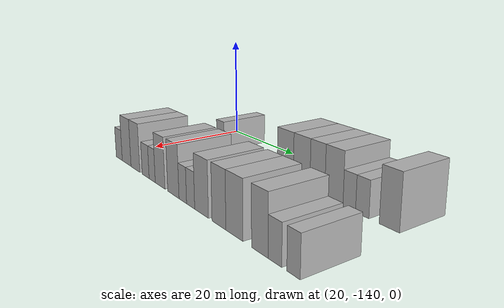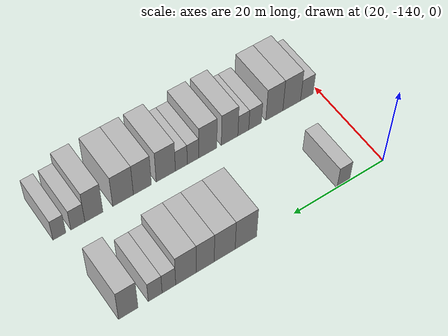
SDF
<sdf version="1.6">
 <world name="default">
  <model name="building_9">
   <static>1</static>
   <pose>25.0000 -130.8985 0 0.000000 0.000000 0.000000</pose>
   <link name="link">
    <pose>0 0 3.00 0 0 0</pose>
    <collision name="collision"><geometry><box><size>10.0000 2.8034 6.0000</size></box></geometry></collision>
    <visual name="visual">
     <cast_shadows>0</cast_shadows>
     <geometry><box><size>10.0000 2.8034 6.0000</size></box></geometry>
     <material>
      <script>
       <uri>model://HANNAS_wall/materials/scripts</uri>
       <uri>model://HANNAS_wall/materials/textures</uri>
       <name>vrc/HANNAS_wall</name>
      </script>
     </material>
    </visual>
   </link>
  </model>
  <model name="building_10">
   <static>1</static>
   <pose>25.0000 -109.7788 0 0.000000 0.000000 0.000000</pose>
   <link name="link">
    <pose>0 0 4.50 0 0 0</pose>
    <collision name="collision"><geometry><box><size>10.0000 4.4786 9.0000</size></box></geometry></collision>
    <visual name="visual">
     <cast_shadows>0</cast_shadows>
     <geometry><box><size>10.0000 4.4786 9.0000</size></box></geometry>
     <material>
      <script>
       <uri>model://HANNAS_wall/materials/scripts</uri>
       <uri>model://HANNAS_wall/materials/textures</uri>
       <name>vrc/HANNAS_wall</name>
      </script>
     </material>
    </visual>
   </link>
  </model>
  <model name="building_11">
   <static>1</static>
   <pose>25.0000 -105.3849 0 0.000000 0.000000 0.000000</pose>
   <link name="link">
    <pose>0 0 4.50 0 0 0</pose>
    <collision name="collision"><geometry><box><size>10.0000 4.3093 9.0000</size></box></geometry></collision>
    <visual name="visual">
     <cast_shadows>0</cast_shadows>
     <geometry><box><size>10.0000 4.3093 9.0000</size></box></geometry>
     <material>
      <script>
       <uri>model://HANNAS_wall/materials/scripts</uri>
       <uri>model://HANNAS_wall/materials/textures</uri>
       <name>vrc/HANNAS_wall</name>
      </script>
     </material>
    </visual>
   </link>
  </model>
  <model name="building_12">
   <static>1</static>
   <pose>25.0000 -101.4164 0 0.000000 0.000000 0.000000</pose>
   <link name="link">
    <pose>0 0 4.50 0 0 0</pose>
    <collision name="collision"><geometry><box><size>10.0000 3.6275 9.0000</size></box></geometry></collision>
    <visual name="visual">
     <cast_shadows>0</cast_shadows>
     <geometry><box><size>10.0000 3.6275 9.0000</size></box></geometry>
     <material>
      <script>
       <uri>model://HANNAS_wall/materials/scripts</uri>
       <uri>model://HANNAS_wall/materials/textures</uri>
       <name>vrc/HANNAS_wall</name>
      </script>
     </material>
    </visual>
   </link>
  </model>
  <model name="building_13">
   <static>1</static>
   <pose>25.0000 -97.5190 0 0.000000 0.000000 0.000000</pose>
   <link name="link">
    <pose>0 0 4.50 0 0 0</pose>
    <collision name="collision"><geometry><box><size>10.0000 4.1674 9.0000</size></box></geometry></collision>
    <visual name="visual">
     <cast_shadows>0</cast_shadows>
     <geometry><box><size>10.0000 4.1674 9.0000</size></box></geometry>
     <material>
      <script>
       <uri>model://HANNAS_wall/materials/scripts</uri>
       <uri>model://HANNAS_wall/materials/textures</uri>
       <name>vrc/HANNAS_wall</name>
      </script>
     </material>
    </visual>
   </link>
  </model>
  <model name="building_14">
   <static>1</static>
   <pose>25.0000 -94.0891 0 0.000000 0.000000 0.000000</pose>
   <link name="link">
    <pose>0 0 3.00 0 0 0</pose>
    <collision name="collision"><geometry><box><size>10.0000 2.6924 6.0000</size></box></geometry></collision>
    <visual name="visual">
     <cast_shadows>0</cast_shadows>
     <geometry><box><size>10.0000 2.6924 6.0000</size></box></geometry>
     <material>
      <script>
       <uri>model://HANNAS_wall/materials/scripts</uri>
       <uri>model://HANNAS_wall/materials/textures</uri>
       <name>vrc/HANNAS_wall</name>
      </script>
     </material>
    </visual>
   </link>
  </model>
  <model name="building_15">
   <static>1</static>
   <pose>25.0000 -91.3764 0 0.000000 0.000000 0.000000</pose>
   <link name="link">
    <pose>0 0 3.00 0 0 0</pose>
    <collision name="collision"><geometry><box><size>10.0000 2.7331 6.0000</size></box></geometry></collision>
    <visual name="visual">
     <cast_shadows>0</cast_shadows>
     <geometry><box><size>10.0000 2.7331 6.0000</size></box></geometry>
     <material>
      <script>
       <uri>model://HANNAS_wall/materials/scripts</uri>
       <uri>model://HANNAS_wall/materials/textures</uri>
       <name>vrc/HANNAS_wall</name>
      </script>
     </material>
    </visual>
   </link>
  </model>
  <model name="building_16">
   <static>1</static>
   <pose>25.0000 -86.1300 0 0.000000 0.000000 0.000000</pose>
   <link name="link">
    <pose>0 0 4.50 0 0 0</pose>
    <collision name="collision"><geometry><box><size>10.0000 3.7596 9.0000</size></box></geometry></collision>
    <visual name="visual">
     <cast_shadows>0</cast_shadows>
     <geometry><box><size>10.0000 3.7596 9.0000</size></box></geometry>
     <material>
      <script>
       <uri>model://HANNAS_wall/materials/scripts</uri>
       <uri>model://HANNAS_wall/materials/textures</uri>
       <name>vrc/HANNAS_wall</name>
      </script>
     </material>
    </visual>
   </link>
  </model>
  <model name="building_100">
   <static>1</static>
   <pose>44.0000 -137.2386 0 0.000000 0.000000 0.000000</pose>
   <link name="link">
    <pose>0 0 3.00 0 0 0</pose>
    <collision name="collision"><geometry><box><size>10.0000 2.9309 6.0000</size></box></geometry></collision>
    <visual name="visual">
     <cast_shadows>0</cast_shadows>
     <geometry><box><size>10.0000 2.9309 6.0000</size></box></geometry>
     <material>
      <script>
       <uri>model://HANNAS_wall/materials/scripts</uri>
       <uri>model://HANNAS_wall/materials/textures</uri>
       <name>vrc/HANNAS_wall</name>
      </script>
     </material>
    </visual>
   </link>
  </model>
  <model name="building_101">
   <static>1</static>
   <pose>44.0000 -133.7177 0 0.000000 0.000000 0.000000</pose>
   <link name="link">
    <pose>0 0 4.50 0 0 0</pose>
    <collision name="collision"><geometry><box><size>10.0000 4.1108 9.0000</size></box></geometry></collision>
    <visual name="visual">
     <cast_shadows>0</cast_shadows>
     <geometry><box><size>10.0000 4.1108 9.0000</size></box></geometry>
     <material>
      <script>
       <uri>model://HANNAS_wall/materials/scripts</uri>
       <uri>model://HANNAS_wall/materials/textures</uri>
       <name>vrc/HANNAS_wall</name>
      </script>
     </material>
    </visual>
   </link>
  </model>
  <model name="building_102">
   <static>1</static>
   <pose>44.0000 -129.7175 0 0.000000 0.000000 0.000000</pose>
   <link name="link">
    <pose>0 0 4.50 0 0 0</pose>
    <collision name="collision"><geometry><box><size>10.0000 3.8896 9.0000</size></box></geometry></collision>
    <visual name="visual">
     <cast_shadows>0</cast_shadows>
     <geometry><box><size>10.0000 3.8896 9.0000</size></box></geometry>
     <material>
      <script>
       <uri>model://HANNAS_wall/materials/scripts</uri>
       <uri>model://HANNAS_wall/materials/textures</uri>
       <name>vrc/HANNAS_wall</name>
      </script>
     </material>
    </visual>
   </link>
  </model>
  <model name="building_103">
   <static>1</static>
   <pose>44.0000 -125.3457 0 0.000000 0.000000 0.000000</pose>
   <link name="link">
    <pose>0 0 3.00 0 0 0</pose>
    <collision name="collision"><geometry><box><size>10.0000 2.8540 6.0000</size></box></geometry></collision>
    <visual name="visual">
     <cast_shadows>0</cast_shadows>
     <geometry><box><size>10.0000 2.8540 6.0000</size></box></geometry>
     <material>
      <script>
       <uri>model://HANNAS_wall/materials/scripts</uri>
       <uri>model://HANNAS_wall/materials/textures</uri>
       <name>vrc/HANNAS_wall</name>
      </script>
     </material>
    </visual>
   </link>
  </model>
  <model name="building_104">
   <static>1</static>
   <pose>44.0000 -122.7043 0 0.000000 0.000000 0.000000</pose>
   <link name="link">
    <pose>0 0 3.00 0 0 0</pose>
    <collision name="collision"><geometry><box><size>10.0000 2.4289 6.0000</size></box></geometry></collision>
    <visual name="visual">
     <cast_shadows>0</cast_shadows>
     <geometry><box><size>10.0000 2.4289 6.0000</size></box></geometry>
     <material>
      <script>
       <uri>model://HANNAS_wall/materials/scripts</uri>
       <uri>model://HANNAS_wall/materials/textures</uri>
       <name>vrc/HANNAS_wall</name>
      </script>
     </material>
    </visual>
   </link>
  </model>
  <model name="building_105">
   <static>1</static>
   <pose>44.0000 -119.6527 0 0.000000 0.000000 0.000000</pose>
   <link name="link">
    <pose>0 0 4.50 0 0 0</pose>
    <collision name="collision"><geometry><box><size>10.0000 3.6745 9.0000</size></box></geometry></collision>
    <visual name="visual">
     <cast_shadows>0</cast_shadows>
     <geometry><box><size>10.0000 3.6745 9.0000</size></box></geometry>
     <material>
      <script>
       <uri>model://HANNAS_wall/materials/scripts</uri>
       <uri>model://HANNAS_wall/materials/textures</uri>
       <name>vrc/HANNAS_wall</name>
      </script>
     </material>
    </visual>
   </link>
  </model>
  <model name="building_106">
   <static>1</static>
   <pose>44.0000 -114.8572 0 0.000000 0.000000 0.000000</pose>
   <link name="link">
    <pose>0 0 4.50 0 0 0</pose>
    <collision name="collision"><geometry><box><size>10.0000 3.9164 9.0000</size></box></geometry></collision>
    <visual name="visual">
     <cast_shadows>0</cast_shadows>
     <geometry><box><size>10.0000 3.9164 9.0000</size></box></geometry>
     <material>
      <script>
       <uri>model://HANNAS_wall/materials/scripts</uri>
       <uri>model://HANNAS_wall/materials/textures</uri>
       <name>vrc/HANNAS_wall</name>
      </script>
     </material>
    </visual>
   </link>
  </model>
  <model name="building_107">
   <static>1</static>
   <pose>44.0000 -111.6564 0 0.000000 0.000000 0.000000</pose>
   <link name="link">
    <pose>0 0 3.00 0 0 0</pose>
    <collision name="collision"><geometry><box><size>10.0000 2.4853 6.0000</size></box></geometry></collision>
    <visual name="visual">
     <cast_shadows>0</cast_shadows>
     <geometry><box><size>10.0000 2.4853 6.0000</size></box></geometry>
     <material>
      <script>
       <uri>model://HANNAS_wall/materials/scripts</uri>
       <uri>model://HANNAS_wall/materials/textures</uri>
       <name>vrc/HANNAS_wall</name>
      </script>
     </material>
    </visual>
   </link>
  </model>
  <model name="building_108">
   <static>1</static>
   <pose>44.0000 -109.1353 0 0.000000 0.000000 0.000000</pose>
   <link name="link">
    <pose>0 0 3.00 0 0 0</pose>
    <collision name="collision"><geometry><box><size>10.0000 2.5568 6.0000</size></box></geometry></collision>
    <visual name="visual">
     <cast_shadows>0</cast_shadows>
     <geometry><box><size>10.0000 2.5568 6.0000</size></box></geometry>
     <material>
      <script>
       <uri>model://HANNAS_wall/materials/scripts</uri>
       <uri>model://HANNAS_wall/materials/textures</uri>
       <name>vrc/HANNAS_wall</name>
      </script>
     </material>
    </visual>
   </link>
  </model>
  <model name="building_109">
   <static>1</static>
   <pose>44.0000 -105.8193 0 0.000000 0.000000 0.000000</pose>
   <link name="link">
    <pose>0 0 4.50 0 0 0</pose>
    <collision name="collision"><geometry><box><size>10.0000 4.0753 9.0000</size></box></geometry></collision>
    <visual name="visual">
     <cast_shadows>0</cast_shadows>
     <geometry><box><size>10.0000 4.0753 9.0000</size></box></geometry>
     <material>
      <script>
       <uri>model://HANNAS_wall/materials/scripts</uri>
       <uri>model://HANNAS_wall/materials/textures</uri>
       <name>vrc/HANNAS_wall</name>
      </script>
     </material>
    </visual>
   </link>
  </model>
  <model name="building_110">
   <static>1</static>
   <pose>44.0000 -100.9081 0 0.000000 0.000000 0.000000</pose>
   <link name="link">
    <pose>0 0 4.50 0 0 0</pose>
    <collision name="collision"><geometry><box><size>10.0000 3.7471 9.0000</size></box></geometry></collision>
    <visual name="visual">
     <cast_shadows>0</cast_shadows>
     <geometry><box><size>10.0000 3.7471 9.0000</size></box></geometry>
     <material>
      <script>
       <uri>model://HANNAS_wall/materials/scripts</uri>
       <uri>model://HANNAS_wall/materials/textures</uri>
       <name>vrc/HANNAS_wall</name>
      </script>
     </material>
    </visual>
   </link>
  </model>
  <model name="building_111">
   <static>1</static>
   <pose>44.0000 -96.9060 0 0.000000 0.000000 0.000000</pose>
   <link name="link">
    <pose>0 0 4.50 0 0 0</pose>
    <collision name="collision"><geometry><box><size>10.0000 4.2571 9.0000</size></box></geometry></collision>
    <visual name="visual">
     <cast_shadows>0</cast_shadows>
     <geometry><box><size>10.0000 4.2571 9.0000</size></box></geometry>
     <material>
      <script>
       <uri>model://HANNAS_wall/materials/scripts</uri>
       <uri>model://HANNAS_wall/materials/textures</uri>
       <name>vrc/HANNAS_wall</name>
      </script>
     </material>
    </visual>
   </link>
  </model>
  <model name="building_112">
   <static>1</static>
   <pose>44.0000 -90.9625 0 0.000000 0.000000 0.000000</pose>
   <link name="link">
    <pose>0 0 4.50 0 0 0</pose>
    <collision name="collision"><geometry><box><size>10.0000 3.6298 9.0000</size></box></geometry></collision>
    <visual name="visual">
     <cast_shadows>0</cast_shadows>
     <geometry><box><size>10.0000 3.6298 9.0000</size></box></geometry>
     <material>
      <script>
       <uri>model://HANNAS_wall/materials/scripts</uri>
       <uri>model://HANNAS_wall/materials/textures</uri>
       <name>vrc/HANNAS_wall</name>
      </script>
     </material>
    </visual>
   </link>
  </model>
  <model name="building_113">
   <static>1</static>
   <pose>44.0000 -87.7412 0 0.000000 0.000000 0.000000</pose>
   <link name="link">
    <pose>0 0 3.00 0 0 0</pose>
    <collision name="collision"><geometry><box><size>10.0000 2.8129 6.0000</size></box></geometry></collision>
    <visual name="visual">
     <cast_shadows>0</cast_shadows>
     <geometry><box><size>10.0000 2.8129 6.0000</size></box></geometry>
     <material>
      <script>
       <uri>model://HANNAS_wall/materials/scripts</uri>
       <uri>model://HANNAS_wall/materials/textures</uri>
       <name>vrc/HANNAS_wall</name>
      </script>
     </material>
    </visual>
   </link>
  </model>
  <model name="building_114">
   <static>1</static>
   <pose>44.0000 -84.0669 0 0.000000 0.000000 0.000000</pose>
   <link name="link">
    <pose>0 0 3.00 0 0 0</pose>
    <collision name="collision"><geometry><box><size>10.0000 2.5356 6.0000</size></box></geometry></collision>
    <visual name="visual">
     <cast_shadows>0</cast_shadows>
     <geometry><box><size>10.0000 2.5356 6.0000</size></box></geometry>
     <material>
      <script>
       <uri>model://HANNAS_wall/materials/scripts</uri>
       <uri>model://HANNAS_wall/materials/textures</uri>
       <name>vrc/HANNAS_wall</name>
      </script>
     </material>
    </visual>
   </link>
  </model>
 </world>
</sdf>
